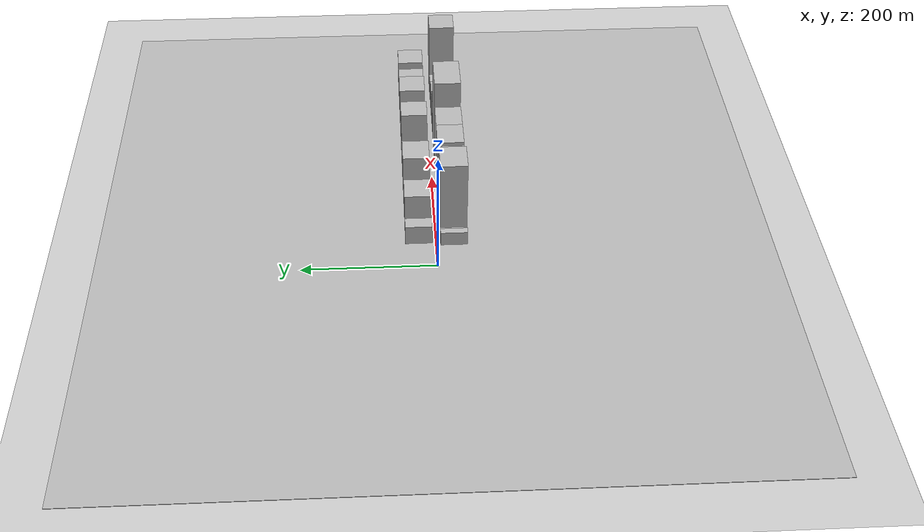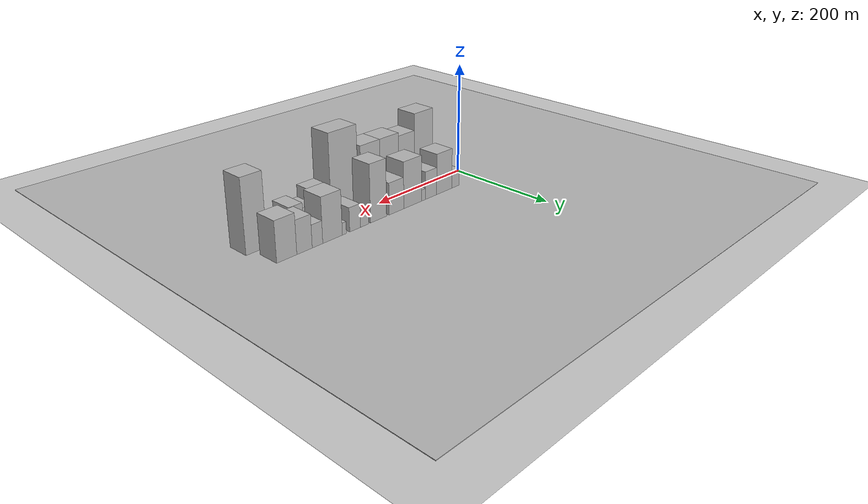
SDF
<?xml version="1.0" encoding="utf-8"?>

<sdf version="1.6">

   <world name="default">

      <gui fullscreen="0">

         <camera name="user_camera">

            <pose>-15 0 4.57585 0 0 0</pose>

            <view_controller>orbit</view_controller>

         </camera>

      </gui>

      <scene>

         <sky>

           <clouds>

             <speed>12</speed>

           </clouds>

         </sky>

         <ambient>0.4 0.4 0.4 1</ambient>

         <background>0.7 0.7 0.7 1</background>

         <shadows>1</shadows>

      </scene>

      <gravity>0 0 -9.8066</gravity>

      <magnetic_field>6e-06 2.3e-05 -4.2e-05</magnetic_field>

      <physics default="0" name="default_physics" type="ode">

         <ode>

            <solver>

               <type>quick</type>

               <iters>10</iters>

               <sor>1.0</sor>

               <use_dynamic_moi_rescaling>0</use_dynamic_moi_rescaling>

            </solver>

            <constraints>

               <cfm>0</cfm>

               <erp>0.2</erp>

               <contact_max_correcting_vel>100</contact_max_correcting_vel>

               <contact_surface_layer>0.001</contact_surface_layer>

            </constraints>

         </ode>

         <max_step_size>0.004</max_step_size>

         <real_time_factor>1</real_time_factor>

         <real_time_update_rate>250</real_time_update_rate>

      </physics>

      <light name="sun" type="directional">

         <cast_shadows>1</cast_shadows>

         <pose>0 0 10 0 0 0</pose>

         <diffuse>0.8 0.8 0.8 1</diffuse>

         <specular>0.2 0.2 0.2 1</specular>

         <attenuation>

            <range>1000</range>

            <constant>0.9</constant>

            <linear>0.01</linear>

            <quadratic>0.001</quadratic>

         </attenuation>

         <direction>-0.5 0.1 -0.9</direction>

      </light>

      <include>

         <name>ground_plane_1</name>

         <uri>model://HANNAS_ground_plane</uri>

         <pose>0 0 0  0 0 0</pose>

      </include>

      <include>

         <name>ground_plane_2</name>

         <uri>model://HANNAS_ground_plane</uri>

         <pose>100 0 0  0 0 0</pose>

      </include>

      <model name="building_1">

         <static>1</static>

         <pose frame="">58.8761 26.0000 0 0.000000 0.000000 1.570796</pose>

         <link name="link">

            <pose frame="">0 0 16.50 0 0 0</pose>

            <collision name="collision">

               <geometry>

                  <box>

                     <size>40.0000 19.7522 33.0000</size>

                  </box>

               </geometry>

               <max_contacts>10</max_contacts>

               <surface>

                  <contact>

                     <ode/>

                  </contact>

                  <bounce/>

                  <friction>

                     <torsional>

                        <ode/>

                     </torsional>

                     <ode/>

                  </friction>

               </surface>

            </collision>

            <visual name="visual">

               <cast_shadows>0</cast_shadows>

               <geometry>

                  <box>

                     <size>40.0000 19.7522 33.0000</size>

                  </box>

               </geometry>

               <material>

                  <script>

                     <uri>model://HANNAS_wall/materials/scripts</uri>

                     <uri>model://HANNAS_wall/materials/textures</uri>

                     <name>vrc/HANNAS_wall</name>

                  </script>

               </material>

            </visual>

            <self_collide>0</self_collide>

            <enable_wind>0</enable_wind>

            <kinematic>0</kinematic>

         </link>

      </model>

      <model name="building_2">

         <static>1</static>

         <pose frame="">88.1360 26.0000 0 0.000000 0.000000 1.570796</pose>

         <link name="link">

            <pose frame="">0 0 37.50 0 0 0</pose>

            <collision name="collision">

               <geometry>

                  <box>

                     <size>40.0000 38.7676 75.0000</size>

                  </box>

               </geometry>

               <max_contacts>10</max_contacts>

               <surface>

                  <contact>

                     <ode/>

                  </contact>

                  <bounce/>

                  <friction>

                     <torsional>

                        <ode/>

                     </torsional>

                     <ode/>

                  </friction>

               </surface>

            </collision>

            <visual name="visual">

               <cast_shadows>0</cast_shadows>

               <geometry>

                  <box>

                     <size>40.0000 38.7676 75.0000</size>

                  </box>

               </geometry>

               <material>

                  <script>

                     <uri>model://HANNAS_wall/materials/scripts</uri>

                     <uri>model://HANNAS_wall/materials/textures</uri>

                     <name>vrc/HANNAS_wall</name>

                  </script>

               </material>

            </visual>

            <self_collide>0</self_collide>

            <enable_wind>0</enable_wind>

            <kinematic>0</kinematic>

         </link>

      </model>

      <model name="building_3">

         <static>1</static>

         <pose frame="">121.4978 26.0000 0 0.000000 0.000000 1.570796</pose>

         <link name="link">

            <pose frame="">0 0 25.50 0 0 0</pose>

            <collision name="collision">

               <geometry>

                  <box>

                     <size>40.0000 27.9560 51.0000</size>

                  </box>

               </geometry>

               <max_contacts>10</max_contacts>

               <surface>

                  <contact>

                     <ode/>

                  </contact>

                  <bounce/>

                  <friction>

                     <torsional>

                        <ode/>

                     </torsional>

                     <ode/>

                  </friction>

               </surface>

            </collision>

            <visual name="visual">

               <cast_shadows>0</cast_shadows>

               <geometry>

                  <box>

                     <size>40.0000 27.9560 51.0000</size>

                  </box>

               </geometry>

               <material>

                  <script>

                     <uri>model://HANNAS_wall/materials/scripts</uri>

                     <uri>model://HANNAS_wall/materials/textures</uri>

                     <name>vrc/HANNAS_wall</name>

                  </script>

               </material>

            </visual>

            <self_collide>0</self_collide>

            <enable_wind>0</enable_wind>

            <kinematic>0</kinematic>

         </link>

      </model>

      <model name="building_4">

         <static>1</static>

         <pose frame="">140.4355 26.0000 0 0.000000 0.000000 1.570796</pose>

         <link name="link">

            <pose frame="">0 0 10.50 0 0 0</pose>

            <collision name="collision">

               <geometry>

                  <box>

                     <size>40.0000 9.9194 21.0000</size>

                  </box>

               </geometry>

               <max_contacts>10</max_contacts>

               <surface>

                  <contact>

                     <ode/>

                  </contact>

                  <bounce/>

                  <friction>

                     <torsional>

                        <ode/>

                     </torsional>

                     <ode/>

                  </friction>

               </surface>

            </collision>

            <visual name="visual">

               <cast_shadows>0</cast_shadows>

               <geometry>

                  <box>

                     <size>40.0000 9.9194 21.0000</size>

                  </box>

               </geometry>

               <material>

                  <script>

                     <uri>model://HANNAS_wall/materials/scripts</uri>

                     <uri>model://HANNAS_wall/materials/textures</uri>

                     <name>vrc/HANNAS_wall</name>

                  </script>

               </material>

            </visual>

            <self_collide>0</self_collide>

            <enable_wind>0</enable_wind>

            <kinematic>0</kinematic>

         </link>

      </model>

      <model name="building_5">

         <static>1</static>

         <pose frame="">166.5454 26.0000 0 0.000000 0.000000 1.570796</pose>

         <link name="link">

            <pose frame="">0 0 42.00 0 0 0</pose>

            <collision name="collision">

               <geometry>

                  <box>

                     <size>40.0000 42.3004 84.0000</size>

                  </box>

               </geometry>

               <max_contacts>10</max_contacts>

               <surface>

                  <contact>

                     <ode/>

                  </contact>

                  <bounce/>

                  <friction>

                     <torsional>

                        <ode/>

                     </torsional>

                     <ode/>

                  </friction>

               </surface>

            </collision>

            <visual name="visual">

               <cast_shadows>0</cast_shadows>

               <geometry>

                  <box>

                     <size>40.0000 42.3004 84.0000</size>

                  </box>

               </geometry>

               <material>

                  <script>

                     <uri>model://HANNAS_wall/materials/scripts</uri>

                     <uri>model://HANNAS_wall/materials/textures</uri>

                     <name>vrc/HANNAS_wall</name>

                  </script>

               </material>

            </visual>

            <self_collide>0</self_collide>

            <enable_wind>0</enable_wind>

            <kinematic>0</kinematic>

         </link>

      </model>

      <model name="building_6">

         <static>1</static>

         <pose frame="">204.6605 26.0000 0 0.000000 0.000000 1.570796</pose>

         <link name="link">

            <pose frame="">0 0 28.50 0 0 0</pose>

            <collision name="collision">

               <geometry>

                  <box>

                     <size>40.0000 33.9298 57.0000</size>

                  </box>

               </geometry>

               <max_contacts>10</max_contacts>

               <surface>

                  <contact>

                     <ode/>

                  </contact>

                  <bounce/>

                  <friction>

                     <torsional>

                        <ode/>

                     </torsional>

                     <ode/>

                  </friction>

               </surface>

            </collision>

            <visual name="visual">

               <cast_shadows>0</cast_shadows>

               <geometry>

                  <box>

                     <size>40.0000 33.9298 57.0000</size>

                  </box>

               </geometry>

               <material>

                  <script>

                     <uri>model://HANNAS_wall/materials/scripts</uri>

                     <uri>model://HANNAS_wall/materials/textures</uri>

                     <name>vrc/HANNAS_wall</name>

                  </script>

               </material>

            </visual>

            <self_collide>0</self_collide>

            <enable_wind>0</enable_wind>

            <kinematic>0</kinematic>

         </link>

      </model>

      <model name="building_7">

         <static>1</static>

         <pose frame="">245.5308 26.0000 0 0.000000 0.000000 1.570796</pose>

         <link name="link">

            <pose frame="">0 0 51.00 0 0 0</pose>

            <collision name="collision">

               <geometry>

                  <box>

                     <size>40.0000 35.8108 102.0000</size>

                  </box>

               </geometry>

               <max_contacts>10</max_contacts>

               <surface>

                  <contact>

                     <ode/>

                  </contact>

                  <bounce/>

                  <friction>

                     <torsional>

                        <ode/>

                     </torsional>

                     <ode/>

                  </friction>

               </surface>

            </collision>

            <visual name="visual">

               <cast_shadows>0</cast_shadows>

               <geometry>

                  <box>

                     <size>40.0000 35.8108 102.0000</size>

                  </box>

               </geometry>

               <material>

                  <script>

                     <uri>model://HANNAS_wall/materials/scripts</uri>

                     <uri>model://HANNAS_wall/materials/textures</uri>

                     <name>vrc/HANNAS_wall</name>

                  </script>

               </material>

            </visual>

            <self_collide>0</self_collide>

            <enable_wind>0</enable_wind>

            <kinematic>0</kinematic>

         </link>

      </model>

      <model name="building_8">

         <static>1</static>

         <pose frame="">276.2237 26.0000 0 0.000000 0.000000 1.570796</pose>

         <link name="link">

            <pose frame="">0 0 15.00 0 0 0</pose>

            <collision name="collision">

               <geometry>

                  <box>

                     <size>40.0000 17.5750 30.0000</size>

                  </box>

               </geometry>

               <max_contacts>10</max_contacts>

               <surface>

                  <contact>

                     <ode/>

                  </contact>

                  <bounce/>

                  <friction>

                     <torsional>

                        <ode/>

                     </torsional>

                     <ode/>

                  </friction>

               </surface>

            </collision>

            <visual name="visual">

               <cast_shadows>0</cast_shadows>

               <geometry>

                  <box>

                     <size>40.0000 17.5750 30.0000</size>

                  </box>

               </geometry>

               <material>

                  <script>

                     <uri>model://HANNAS_wall/materials/scripts</uri>

                     <uri>model://HANNAS_wall/materials/textures</uri>

                     <name>vrc/HANNAS_wall</name>

                  </script>

               </material>

            </visual>

            <self_collide>0</self_collide>

            <enable_wind>0</enable_wind>

            <kinematic>0</kinematic>

         </link>

      </model>

      <model name="building_9">

         <static>1</static>

         <pose frame="">296.5904 26.0000 0 0.000000 0.000000 1.570796</pose>

         <link name="link">

            <pose frame="">0 0 21.00 0 0 0</pose>

            <collision name="collision">

               <geometry>

                  <box>

                     <size>40.0000 23.1583 42.0000</size>

                  </box>

               </geometry>

               <max_contacts>10</max_contacts>

               <surface>

                  <contact>

                     <ode/>

                  </contact>

                  <bounce/>

                  <friction>

                     <torsional>

                        <ode/>

                     </torsional>

                     <ode/>

                  </friction>

               </surface>

            </collision>

            <visual name="visual">

               <cast_shadows>0</cast_shadows>

               <geometry>

                  <box>

                     <size>40.0000 23.1583 42.0000</size>

                  </box>

               </geometry>

               <material>

                  <script>

                     <uri>model://HANNAS_wall/materials/scripts</uri>

                     <uri>model://HANNAS_wall/materials/textures</uri>

                     <name>vrc/HANNAS_wall</name>

                  </script>

               </material>

            </visual>

            <self_collide>0</self_collide>

            <enable_wind>0</enable_wind>

            <kinematic>0</kinematic>

         </link>

      </model>

      <model name="building_10">

         <static>1</static>

         <pose frame="">319.4005 26.0000 0 0.000000 0.000000 1.570796</pose>

         <link name="link">

            <pose frame="">0 0 10.50 0 0 0</pose>

            <collision name="collision">

               <geometry>

                  <box>

                     <size>40.0000 8.4619 21.0000</size>

                  </box>

               </geometry>

               <max_contacts>10</max_contacts>

               <surface>

                  <contact>

                     <ode/>

                  </contact>

                  <bounce/>

                  <friction>

                     <torsional>

                        <ode/>

                     </torsional>

                     <ode/>

                  </friction>

               </surface>

            </collision>

            <visual name="visual">

               <cast_shadows>0</cast_shadows>

               <geometry>

                  <box>

                     <size>40.0000 8.4619 21.0000</size>

                  </box>

               </geometry>

               <material>

                  <script>

                     <uri>model://HANNAS_wall/materials/scripts</uri>

                     <uri>model://HANNAS_wall/materials/textures</uri>

                     <name>vrc/HANNAS_wall</name>

                  </script>

               </material>

            </visual>

            <self_collide>0</self_collide>

            <enable_wind>0</enable_wind>

            <kinematic>0</kinematic>

         </link>

      </model>

      <model name="building_11">

         <static>1</static>

         <pose frame="">343.5191 26.0000 0 0.000000 0.000000 1.570796</pose>

         <link name="link">

            <pose frame="">0 0 39.00 0 0 0</pose>

            <collision name="collision">

               <geometry>

                  <box>

                     <size>40.0000 39.7751 78.0000</size>

                  </box>

               </geometry>

               <max_contacts>10</max_contacts>

               <surface>

                  <contact>

                     <ode/>

                  </contact>

                  <bounce/>

                  <friction>

                     <torsional>

                        <ode/>

                     </torsional>

                     <ode/>

                  </friction>

               </surface>

            </collision>

            <visual name="visual">

               <cast_shadows>0</cast_shadows>

               <geometry>

                  <box>

                     <size>40.0000 39.7751 78.0000</size>

                  </box>

               </geometry>

               <material>

                  <script>

                     <uri>model://HANNAS_wall/materials/scripts</uri>

                     <uri>model://HANNAS_wall/materials/textures</uri>

                     <name>vrc/HANNAS_wall</name>

                  </script>

               </material>

            </visual>

            <self_collide>0</self_collide>

            <enable_wind>0</enable_wind>

            <kinematic>0</kinematic>

         </link>

      </model>

      <model name="building_12">

         <static>1</static>

         <pose frame="">373.8070 26.0000 0 0.000000 0.000000 1.570796</pose>

         <link name="link">

            <pose frame="">0 0 19.50 0 0 0</pose>

            <collision name="collision">

               <geometry>

                  <box>

                     <size>40.0000 20.8008 39.0000</size>

                  </box>

               </geometry>

               <max_contacts>10</max_contacts>

               <surface>

                  <contact>

                     <ode/>

                  </contact>

                  <bounce/>

                  <friction>

                     <torsional>

                        <ode/>

                     </torsional>

                     <ode/>

                  </friction>

               </surface>

            </collision>

            <visual name="visual">

               <cast_shadows>0</cast_shadows>

               <geometry>

                  <box>

                     <size>40.0000 20.8008 39.0000</size>

                  </box>

               </geometry>

               <material>

                  <script>

                     <uri>model://HANNAS_wall/materials/scripts</uri>

                     <uri>model://HANNAS_wall/materials/textures</uri>

                     <name>vrc/HANNAS_wall</name>

                  </script>

               </material>

            </visual>

            <self_collide>0</self_collide>

            <enable_wind>0</enable_wind>

            <kinematic>0</kinematic>

         </link>

      </model>

      <model name="building_13">

         <static>1</static>

         <pose frame="">398.9847 26.0000 0 0.000000 0.000000 1.570796</pose>

         <link name="link">

            <pose frame="">0 0 28.50 0 0 0</pose>

            <collision name="collision">

               <geometry>

                  <box>

                     <size>40.0000 29.5546 57.0000</size>

                  </box>

               </geometry>

               <max_contacts>10</max_contacts>

               <surface>

                  <contact>

                     <ode/>

                  </contact>

                  <bounce/>

                  <friction>

                     <torsional>

                        <ode/>

                     </torsional>

                     <ode/>

                  </friction>

               </surface>

            </collision>

            <visual name="visual">

               <cast_shadows>0</cast_shadows>

               <geometry>

                  <box>

                     <size>40.0000 29.5546 57.0000</size>

                  </box>

               </geometry>

               <material>

                  <script>

                     <uri>model://HANNAS_wall/materials/scripts</uri>

                     <uri>model://HANNAS_wall/materials/textures</uri>

                     <name>vrc/HANNAS_wall</name>

                  </script>

               </material>

            </visual>

            <self_collide>0</self_collide>

            <enable_wind>0</enable_wind>

            <kinematic>0</kinematic>

         </link>

      </model>

      <model name="building_14">

         <static>1</static>

         <pose frame="">432.5335 26.0000 0 0.000000 0.000000 1.570796</pose>

         <link name="link">

            <pose frame="">0 0 34.50 0 0 0</pose>

            <collision name="collision">

               <geometry>

                  <box>

                     <size>40.0000 37.5429 69.0000</size>

                  </box>

               </geometry>

               <max_contacts>10</max_contacts>

               <surface>

                  <contact>

                     <ode/>

                  </contact>

                  <bounce/>

                  <friction>

                     <torsional>

                        <ode/>

                     </torsional>

                     <ode/>

                  </friction>

               </surface>

            </collision>

            <visual name="visual">

               <cast_shadows>0</cast_shadows>

               <geometry>

                  <box>

                     <size>40.0000 37.5429 69.0000</size>

                  </box>

               </geometry>

               <material>

                  <script>

                     <uri>model://HANNAS_wall/materials/scripts</uri>

                     <uri>model://HANNAS_wall/materials/textures</uri>

                     <name>vrc/HANNAS_wall</name>

                  </script>

               </material>

            </visual>

            <self_collide>0</self_collide>

            <enable_wind>0</enable_wind>

            <kinematic>0</kinematic>

         </link>

      </model>

      <model name="building_15">

         <static>1</static>

         <pose frame="">49.0996 -26.0000 0 0.000000 0.000000 1.570796</pose>

         <link name="link">

            <pose frame="">0 0 12.00 0 0 0</pose>

            <collision name="collision">

               <geometry>

                  <box>

                     <size>40.0000 10.1993 24.0000</size>

                  </box>

               </geometry>

               <max_contacts>10</max_contacts>

               <surface>

                  <contact>

                     <ode/>

                  </contact>

                  <bounce/>

                  <friction>

                     <torsional>

                        <ode/>

                     </torsional>

                     <ode/>

                  </friction>

               </surface>

            </collision>

            <visual name="visual">

               <cast_shadows>0</cast_shadows>

               <geometry>

                  <box>

                     <size>40.0000 10.1993 24.0000</size>

                  </box>

               </geometry>

               <material>

                  <script>

                     <uri>model://HANNAS_wall/materials/scripts</uri>

                     <uri>model://HANNAS_wall/materials/textures</uri>

                     <name>vrc/HANNAS_wall</name>

                  </script>

               </material>

            </visual>

            <self_collide>0</self_collide>

            <enable_wind>0</enable_wind>

            <kinematic>0</kinematic>

         </link>

      </model>

      <model name="building_16">

         <static>1</static>

         <pose frame="">58.5199 -26.0000 0 0.000000 0.000000 1.570796</pose>

         <link name="link">

            <pose frame="">0 0 9.00 0 0 0</pose>

            <collision name="collision">

               <geometry>

                  <box>

                     <size>40.0000 8.6412 18.0000</size>

                  </box>

               </geometry>

               <max_contacts>10</max_contacts>

               <surface>

                  <contact>

                     <ode/>

                  </contact>

                  <bounce/>

                  <friction>

                     <torsional>

                        <ode/>

                     </torsional>

                     <ode/>

                  </friction>

               </surface>

            </collision>

            <visual name="visual">

               <cast_shadows>0</cast_shadows>

               <geometry>

                  <box>

                     <size>40.0000 8.6412 18.0000</size>

                  </box>

               </geometry>

               <material>

                  <script>

                     <uri>model://HANNAS_wall/materials/scripts</uri>

                     <uri>model://HANNAS_wall/materials/textures</uri>

                     <name>vrc/HANNAS_wall</name>

                  </script>

               </material>

            </visual>

            <self_collide>0</self_collide>

            <enable_wind>0</enable_wind>

            <kinematic>0</kinematic>

         </link>

      </model>

      <model name="building_17">

         <static>1</static>

         <pose frame="">85.5615 -26.0000 0 0.000000 0.000000 1.570796</pose>

         <link name="link">

            <pose frame="">0 0 67.50 0 0 0</pose>

            <collision name="collision">

               <geometry>

                  <box>

                     <size>40.0000 45.4419 135.0000</size>

                  </box>

               </geometry>

               <max_contacts>10</max_contacts>

               <surface>

                  <contact>

                     <ode/>

                  </contact>

                  <bounce/>

                  <friction>

                     <torsional>

                        <ode/>

                     </torsional>

                     <ode/>

                  </friction>

               </surface>

            </collision>

            <visual name="visual">

               <cast_shadows>0</cast_shadows>

               <geometry>

                  <box>

                     <size>40.0000 45.4419 135.0000</size>

                  </box>

               </geometry>

               <material>

                  <script>

                     <uri>model://HANNAS_wall/materials/scripts</uri>

                     <uri>model://HANNAS_wall/materials/textures</uri>

                     <name>vrc/HANNAS_wall</name>

                  </script>

               </material>

            </visual>

            <self_collide>0</self_collide>

            <enable_wind>0</enable_wind>

            <kinematic>0</kinematic>

         </link>

      </model>

      <model name="building_18">

         <static>1</static>

         <pose frame="">127.7809 -26.0000 0 0.000000 0.000000 1.570796</pose>

         <link name="link">

            <pose frame="">0 0 52.50 0 0 0</pose>

            <collision name="collision">

               <geometry>

                  <box>

                     <size>40.0000 38.9969 105.0000</size>

                  </box>

               </geometry>

               <max_contacts>10</max_contacts>

               <surface>

                  <contact>

                     <ode/>

                  </contact>

                  <bounce/>

                  <friction>

                     <torsional>

                        <ode/>

                     </torsional>

                     <ode/>

                  </friction>

               </surface>

            </collision>

            <visual name="visual">

               <cast_shadows>0</cast_shadows>

               <geometry>

                  <box>

                     <size>40.0000 38.9969 105.0000</size>

                  </box>

               </geometry>

               <material>

                  <script>

                     <uri>model://HANNAS_wall/materials/scripts</uri>

                     <uri>model://HANNAS_wall/materials/textures</uri>

                     <name>vrc/HANNAS_wall</name>

                  </script>

               </material>

            </visual>

            <self_collide>0</self_collide>

            <enable_wind>0</enable_wind>

            <kinematic>0</kinematic>

         </link>

      </model>

      <model name="building_19">

         <static>1</static>

         <pose frame="">168.9784 -26.0000 0 0.000000 0.000000 1.570796</pose>

         <link name="link">

            <pose frame="">0 0 55.50 0 0 0</pose>

            <collision name="collision">

               <geometry>

                  <box>

                     <size>40.0000 43.3982 111.0000</size>

                  </box>

               </geometry>

               <max_contacts>10</max_contacts>

               <surface>

                  <contact>

                     <ode/>

                  </contact>

                  <bounce/>

                  <friction>

                     <torsional>

                        <ode/>

                     </torsional>

                     <ode/>

                  </friction>

               </surface>

            </collision>

            <visual name="visual">

               <cast_shadows>0</cast_shadows>

               <geometry>

                  <box>

                     <size>40.0000 43.3982 111.0000</size>

                  </box>

               </geometry>

               <material>

                  <script>

                     <uri>model://HANNAS_wall/materials/scripts</uri>

                     <uri>model://HANNAS_wall/materials/textures</uri>

                     <name>vrc/HANNAS_wall</name>

                  </script>

               </material>

            </visual>

            <self_collide>0</self_collide>

            <enable_wind>0</enable_wind>

            <kinematic>0</kinematic>

         </link>

      </model>

      <model name="building_20">

         <static>1</static>

         <pose frame="">212.6721 -26.0000 0 0.000000 0.000000 1.570796</pose>

         <link name="link">

            <pose frame="">0 0 55.50 0 0 0</pose>

            <collision name="collision">

               <geometry>

                  <box>

                     <size>40.0000 43.9893 111.0000</size>

                  </box>

               </geometry>

               <max_contacts>10</max_contacts>

               <surface>

                  <contact>

                     <ode/>

                  </contact>

                  <bounce/>

                  <friction>

                     <torsional>

                        <ode/>

                     </torsional>

                     <ode/>

                  </friction>

               </surface>

            </collision>

            <visual name="visual">

               <cast_shadows>0</cast_shadows>

               <geometry>

                  <box>

                     <size>40.0000 43.9893 111.0000</size>

                  </box>

               </geometry>

               <material>

                  <script>

                     <uri>model://HANNAS_wall/materials/scripts</uri>

                     <uri>model://HANNAS_wall/materials/textures</uri>

                     <name>vrc/HANNAS_wall</name>

                  </script>

               </material>

            </visual>

            <self_collide>0</self_collide>

            <enable_wind>0</enable_wind>

            <kinematic>0</kinematic>

         </link>

      </model>

      <model name="building_21">

         <static>1</static>

         <pose frame="">271.1728 -26.0000 0 0.000000 0.000000 1.570796</pose>

         <link name="link">

            <pose frame="">0 0 75.00 0 0 0</pose>

            <collision name="collision">

               <geometry>

                  <box>

                     <size>40.0000 59.0120 150.0000</size>

                  </box>

               </geometry>

               <max_contacts>10</max_contacts>

               <surface>

                  <contact>

                     <ode/>

                  </contact>

                  <bounce/>

                  <friction>

                     <torsional>

                        <ode/>

                     </torsional>

                     <ode/>

                  </friction>

               </surface>

            </collision>

            <visual name="visual">

               <cast_shadows>0</cast_shadows>

               <geometry>

                  <box>

                     <size>40.0000 59.0120 150.0000</size>

                  </box>

               </geometry>

               <material>

                  <script>

                     <uri>model://HANNAS_wall/materials/scripts</uri>

                     <uri>model://HANNAS_wall/materials/textures</uri>

                     <name>vrc/HANNAS_wall</name>

                  </script>

               </material>

            </visual>

            <self_collide>0</self_collide>

            <enable_wind>0</enable_wind>

            <kinematic>0</kinematic>

         </link>

      </model>

      <model name="building_22">

         <static>1</static>

         <pose frame="">318.3493 -26.0000 0 0.000000 0.000000 1.570796</pose>

         <link name="link">

            <pose frame="">0 0 31.50 0 0 0</pose>

            <collision name="collision">

               <geometry>

                  <box>

                     <size>40.0000 35.3409 63.0000</size>

                  </box>

               </geometry>

               <max_contacts>10</max_contacts>

               <surface>

                  <contact>

                     <ode/>

                  </contact>

                  <bounce/>

                  <friction>

                     <torsional>

                        <ode/>

                     </torsional>

                     <ode/>

                  </friction>

               </surface>

            </collision>

            <visual name="visual">

               <cast_shadows>0</cast_shadows>

               <geometry>

                  <box>

                     <size>40.0000 35.3409 63.0000</size>

                  </box>

               </geometry>

               <material>

                  <script>

                     <uri>model://HANNAS_wall/materials/scripts</uri>

                     <uri>model://HANNAS_wall/materials/textures</uri>

                     <name>vrc/HANNAS_wall</name>

                  </script>

               </material>

            </visual>

            <self_collide>0</self_collide>

            <enable_wind>0</enable_wind>

            <kinematic>0</kinematic>

         </link>

      </model>

      <model name="building_23">

         <static>1</static>

         <pose frame="">347.0046 -26.0000 0 0.000000 0.000000 1.570796</pose>

         <link name="link">

            <pose frame="">0 0 21.00 0 0 0</pose>

            <collision name="collision">

               <geometry>

                  <box>

                     <size>40.0000 21.9697 42.0000</size>

                  </box>

               </geometry>

               <max_contacts>10</max_contacts>

               <surface>

                  <contact>

                     <ode/>

                  </contact>

                  <bounce/>

                  <friction>

                     <torsional>

                        <ode/>

                     </torsional>

                     <ode/>

                  </friction>

               </surface>

            </collision>

            <visual name="visual">

               <cast_shadows>0</cast_shadows>

               <geometry>

                  <box>

                     <size>40.0000 21.9697 42.0000</size>

                  </box>

               </geometry>

               <material>

                  <script>

                     <uri>model://HANNAS_wall/materials/scripts</uri>

                     <uri>model://HANNAS_wall/materials/textures</uri>

                     <name>vrc/HANNAS_wall</name>

                  </script>

               </material>

            </visual>

            <self_collide>0</self_collide>

            <enable_wind>0</enable_wind>

            <kinematic>0</kinematic>

         </link>

      </model>

      <model name="building_24">

         <static>1</static>

         <pose frame="">371.3682 -26.0000 0 0.000000 0.000000 1.570796</pose>

         <link name="link">

            <pose frame="">0 0 25.50 0 0 0</pose>

            <collision name="collision">

               <geometry>

                  <box>

                     <size>40.0000 26.7575 51.0000</size>

                  </box>

               </geometry>

               <max_contacts>10</max_contacts>

               <surface>

                  <contact>

                     <ode/>

                  </contact>

                  <bounce/>

                  <friction>

                     <torsional>

                        <ode/>

                     </torsional>

                     <ode/>

                  </friction>

               </surface>

            </collision>

            <visual name="visual">

               <cast_shadows>0</cast_shadows>

               <geometry>

                  <box>

                     <size>40.0000 26.7575 51.0000</size>

                  </box>

               </geometry>

               <material>

                  <script>

                     <uri>model://HANNAS_wall/materials/scripts</uri>

                     <uri>model://HANNAS_wall/materials/textures</uri>

                     <name>vrc/HANNAS_wall</name>

                  </script>

               </material>

            </visual>

            <self_collide>0</self_collide>

            <enable_wind>0</enable_wind>

            <kinematic>0</kinematic>

         </link>

      </model>

      <model name="building_25">

         <static>1</static>

         <pose frame="">394.1914 -26.0000 0 0.000000 0.000000 1.570796</pose>

         <link name="link">

            <pose frame="">0 0 18.00 0 0 0</pose>

            <collision name="collision">

               <geometry>

                  <box>

                     <size>40.0000 18.8889 36.0000</size>

                  </box>

               </geometry>

               <max_contacts>10</max_contacts>

               <surface>

                  <contact>

                     <ode/>

                  </contact>

                  <bounce/>

                  <friction>

                     <torsional>

                        <ode/>

                     </torsional>

                     <ode/>

                  </friction>

               </surface>

            </collision>

            <visual name="visual">

               <cast_shadows>0</cast_shadows>

               <geometry>

                  <box>

                     <size>40.0000 18.8889 36.0000</size>

                  </box>

               </geometry>

               <material>

                  <script>

                     <uri>model://HANNAS_wall/materials/scripts</uri>

                     <uri>model://HANNAS_wall/materials/textures</uri>

                     <name>vrc/HANNAS_wall</name>

                  </script>

               </material>

            </visual>

            <self_collide>0</self_collide>

            <enable_wind>0</enable_wind>

            <kinematic>0</kinematic>

         </link>

      </model>

      <model name="building_26">

         <static>1</static>

         <pose frame="">406.8486 -26.0000 0 0.000000 0.000000 1.570796</pose>

         <link name="link">

            <pose frame="">0 0 7.50 0 0 0</pose>

            <collision name="collision">

               <geometry>

                  <box>

                     <size>40.0000 6.4255 15.0000</size>

                  </box>

               </geometry>

               <max_contacts>10</max_contacts>

               <surface>

                  <contact>

                     <ode/>

                  </contact>

                  <bounce/>

                  <friction>

                     <torsional>

                        <ode/>

                     </torsional>

                     <ode/>

                  </friction>

               </surface>

            </collision>

            <visual name="visual">

               <cast_shadows>0</cast_shadows>

               <geometry>

                  <box>

                     <size>40.0000 6.4255 15.0000</size>

                  </box>

               </geometry>

               <material>

                  <script>

                     <uri>model://HANNAS_wall/materials/scripts</uri>

                     <uri>model://HANNAS_wall/materials/textures</uri>

                     <name>vrc/HANNAS_wall</name>

                  </script>

               </material>

            </visual>

            <self_collide>0</self_collide>

            <enable_wind>0</enable_wind>

            <kinematic>0</kinematic>

         </link>

      </model>

      <model name="building_27">

         <static>1</static>

         <pose frame="">419.5922 -26.0000 0 0.000000 0.000000 1.570796</pose>

         <link name="link">

            <pose frame="">0 0 16.50 0 0 0</pose>

            <collision name="collision">

               <geometry>

                  <box>

                     <size>40.0000 19.0616 33.0000</size>

                  </box>

               </geometry>

               <max_contacts>10</max_contacts>

               <surface>

                  <contact>

                     <ode/>

                  </contact>

                  <bounce/>

                  <friction>

                     <torsional>

                        <ode/>

                     </torsional>

                     <ode/>

                  </friction>

               </surface>

            </collision>

            <visual name="visual">

               <cast_shadows>0</cast_shadows>

               <geometry>

                  <box>

                     <size>40.0000 19.0616 33.0000</size>

                  </box>

               </geometry>

               <material>

                  <script>

                     <uri>model://HANNAS_wall/materials/scripts</uri>

                     <uri>model://HANNAS_wall/materials/textures</uri>

                     <name>vrc/HANNAS_wall</name>

                  </script>

               </material>

            </visual>

            <self_collide>0</self_collide>

            <enable_wind>0</enable_wind>

            <kinematic>0</kinematic>

         </link>

      </model>

      <model name="building_28">

         <static>1</static>

         <pose frame="">448.5561 -26.0000 0 0.000000 0.000000 1.570796</pose>

         <link name="link">

            <pose frame="">0 0 63.00 0 0 0</pose>

            <collision name="collision">

               <geometry>

                  <box>

                     <size>40.0000 38.8663 126.0000</size>

                  </box>

               </geometry>

               <max_contacts>10</max_contacts>

               <surface>

                  <contact>

                     <ode/>

                  </contact>

                  <bounce/>

                  <friction>

                     <torsional>

                        <ode/>

                     </torsional>

                     <ode/>

                  </friction>

               </surface>

            </collision>

            <visual name="visual">

               <cast_shadows>0</cast_shadows>

               <geometry>

                  <box>

                     <size>40.0000 38.8663 126.0000</size>

                  </box>

               </geometry>

               <material>

                  <script>

                     <uri>model://HANNAS_wall/materials/scripts</uri>

                     <uri>model://HANNAS_wall/materials/textures</uri>

                     <name>vrc/HANNAS_wall</name>

                  </script>

               </material>

            </visual>

            <self_collide>0</self_collide>

            <enable_wind>0</enable_wind>

            <kinematic>0</kinematic>

         </link>

      </model>

   </world>

</sdf>

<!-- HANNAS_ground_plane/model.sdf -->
<sdf version="1.4">
<model name="HANNAS_ground_plane">
  <static>true</static>
    <link name="link">
      <collision name="collision">
        <geometry>
          <plane>
            <normal>0 0 1</normal>
            <size>1000 1000</size>
          </plane>
        </geometry>
        <surface>
          <friction>
            <ode>
              <mu>100</mu>
              <mu2>50</mu2>
            </ode>
          </friction>
        </surface>
      </collision>
      <visual name="visual">
        <cast_shadows>false</cast_shadows>
        <geometry>
          <plane>
            <normal>0 0 1</normal>
            <size>1000 1000</size>
          </plane>
        </geometry>
        <material>
          <script>
            <uri>model://HANNAS_ground_plane/materials/scripts/HANNAS_ground_plane.material</uri>
	    <uri>model://HANNAS_ground_plane/materials/textures</uri>
            <name>HANNASGroundPlane/Image</name>
          </script>
        </material>
      </visual>
    </link>
  </model>
</sdf>
